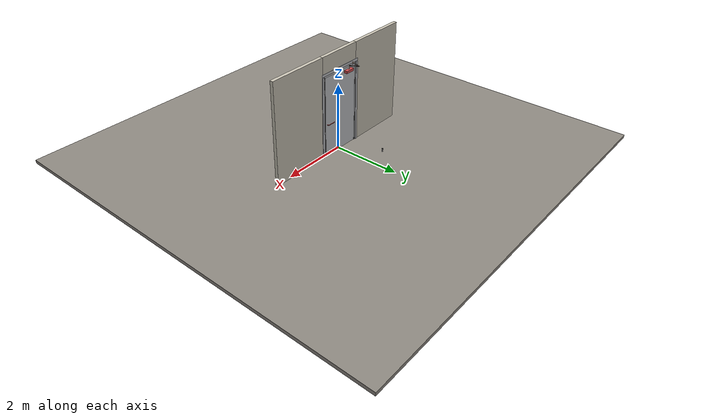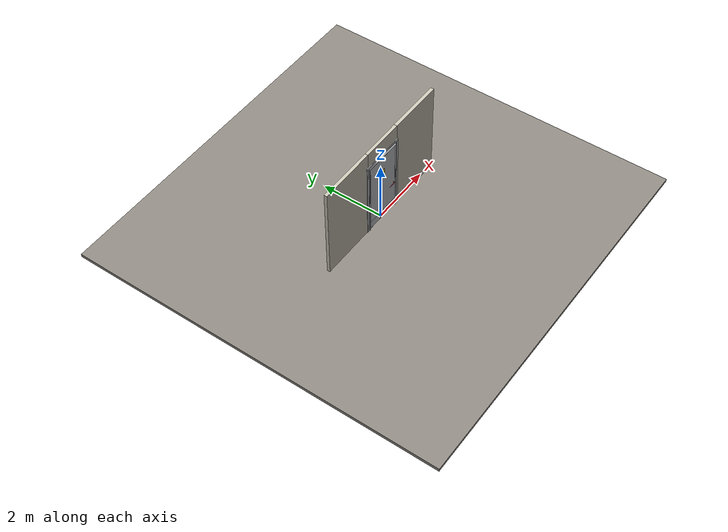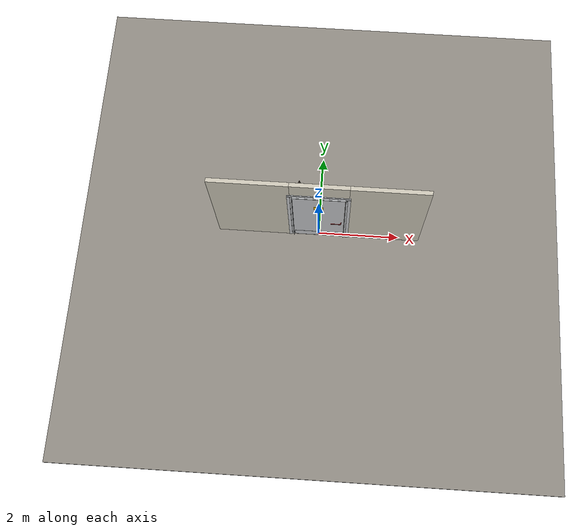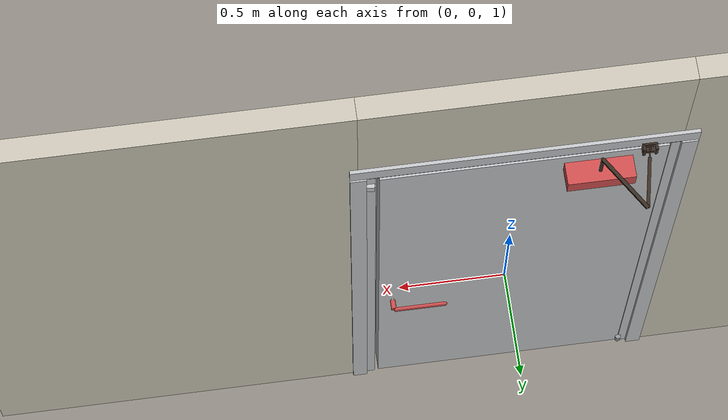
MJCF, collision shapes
<?xml version="1.0" ?>
<mujoco model="db0585_cold_storage_full">
  <compiler angle="radian" meshdir="../../hardware" texturedir="../../textures" autolimits="true" inertiafromgeom="false"/>
  <option timestep="0.002" integrator="implicitfast" cone="elliptic" impratio="10" noslip_iterations="3">
    <flag multiccd="enable"/>
  </option>
  <size memory="16M"/>
  <default>
    <geom condim="4" solref="0.005 1" solimp="0.95 0.99 0.001"/>
    <joint solreflimit="0.005 1" solimplimit="0.95 0.99 0.001"/>
    <tendon solreflimit="0.005 1"/>
    <equality solref="0.002 1"/>
  </default>
  <visual>
    <headlight ambient="0.4 0.4 0.4" diffuse="0.7 0.7 0.7" specular="0.2 0.2 0.2"/>
    <quality shadowsize="4096"/>
    <map znear="0.01" zfar="60"/>
  </visual>
  <asset>
    <mesh name="closer_body_fdc4667657" file="closer_body_fdc4667657.obj"/>
    <mesh name="hinge_05d9a38dfa" file="hinge_05d9a38dfa.obj"/>
    <mesh name="hinge_jamb_953fb56768" file="hinge_jamb_953fb56768.obj"/>
    <mesh name="lever_40740b93f7" file="lever_40740b93f7.obj"/>
    <material name="mat_floor" rgba="0.55 0.53 0.5 1" specular="0.2" shininess="0.15" reflectance="0"/>
    <material name="mat_wall" rgba="0.78 0.76 0.7 1" specular="0.2" shininess="0.1" reflectance="0"/>
    <material name="mat_hinge" rgba="0.55 0.56 0.58 1" specular="0.8" shininess="0.55" reflectance="0.4"/>
    <material name="mat_leaf" rgba="0.75 0.76 0.77 1" specular="0.8" shininess="0.65" reflectance="0.4"/>
    <material name="mat_op_chrome" rgba="0.9 0.9 0.92 1" specular="0.8" shininess="0.9" reflectance="0.4"/>
    <material name="mat_trim" rgba="0.85 0.66 0.3 1" specular="0.8" shininess="0.75" reflectance="0.4"/>
    <material name="mat_bolt" rgba="0.75 0.76 0.77 1" specular="0.8" shininess="0.65" reflectance="0.4"/>
    <material name="mat_frame" rgba="0.75 0.76 0.77 1" specular="0.8" shininess="0.65" reflectance="0.4"/>
    <material name="mat_seal" rgba="0.1 0.1 0.1 1" specular="0.2" shininess="0.1" reflectance="0"/>
    <material name="mat_closer" rgba="0.22 0.17 0.13 1" specular="0.8" shininess="0.6" reflectance="0.4"/>
    <material name="mat_kick" rgba="0.75 0.76 0.77 1" specular="0.8" shininess="0.65" reflectance="0.4"/>
    <material name="mat_placard" rgba="0.95 0.75 0.05 1" specular="0.2" shininess="0.5" reflectance="0"/>
    <material name="mat_bumper_stop" rgba="0.08 0.08 0.08 1" specular="0.2" shininess="0.1" reflectance="0"/>
    <material name="mat_stop_base" rgba="0.9 0.9 0.92 1" specular="0.8" shininess="0.9" reflectance="0.4"/>
    <texture name="skybox" type="skybox" builtin="gradient" rgb1="0.6 0.7 0.85" rgb2="0.9 0.92 0.95" width="256" height="256"/>
  </asset>
  <worldbody>
    <light name="sun" pos="1.5 -2.5 4" dir="-0.3 0.5 -0.8" directional="true" diffuse="0.8 0.8 0.8" specular="0.3 0.3 0.3" castshadow="true"/>
    <light name="fill" pos="-1.5 2.5 3" dir="0.3 -0.5 -0.7" directional="true" diffuse="0.35 0.35 0.4" castshadow="false"/>
    <camera name="robot_view" pos="0 -2.93125 2.05075" xyaxes="1 0 0 0 0.26963 0.962964" fovy="52"/>
    <camera name="far_view" pos="0 2.93125 2.05075" xyaxes="-1 0 0 0 -0.26963 0.962964" fovy="52"/>
    <camera name="iso" pos="2.22775 -2.46225 2.51975" xyaxes="0.741536 0.670913 0 -0.242917 0.268487 0.932151" fovy="46"/>
    <camera name="detail_handle" pos="0.518 -0.905 1.28" xyaxes="0.97561 0.219512 0 -0.070934 0.315262 0.94635" fovy="38"/>
    <geom name="floor" type="box" size="6 6 0.05" pos="0 0 -0.05" material="mat_floor" group="0" contype="1" conaffinity="1" friction="0.8 0.005 0.0001" density="2400"/>
    <geom name="wall_left" type="box" size="0.9175 0.05 1.53" pos="-1.5825 0 1.53" material="mat_wall" group="0" contype="1" conaffinity="1" friction="0.6 0.005 0.0001" density="800"/>
    <geom name="wall_right" type="box" size="0.9025 0.05 1.53" pos="1.5975 0 1.53" material="mat_wall" group="0" contype="1" conaffinity="1" friction="0.6 0.005 0.0001" density="800"/>
    <geom name="wall_header" type="box" size="0.68 0.05 0.2625" pos="0.015 0 2.7975" material="mat_wall" group="0" contype="1" conaffinity="1" friction="0.6 0.005 0.0001" density="800"/>
    <geom name="hinge_0_jamb" type="mesh" mesh="hinge_jamb_953fb56768" pos="-0.617 0.057 0.262" quat="0 1 0 0" material="mat_hinge" group="1" contype="0" conaffinity="0" density="7850"/>
    <geom name="hinge_1_jamb" type="mesh" mesh="hinge_jamb_953fb56768" pos="-0.617 0.057 1.2242" quat="0 1 0 0" material="mat_hinge" group="1" contype="0" conaffinity="0" density="7850"/>
    <geom name="hinge_2_jamb" type="mesh" mesh="hinge_jamb_953fb56768" pos="-0.617 0.057 2.2564" quat="0 1 0 0" material="mat_hinge" group="1" contype="0" conaffinity="0" density="7850"/>
    <geom name="jamb_hinge" type="box" size="0.0225 0.05 1.23" pos="-0.6425 0 1.23" material="mat_frame" group="0" contype="1" conaffinity="1" friction="0.6 0.005 0.0001" density="300"/>
    <geom name="strike_2386_wall_n" type="box" size="0.0375 0.02125 0.019" pos="0.6575 -0.02875 2.3864" material="mat_frame" group="0" contype="1" conaffinity="1" friction="0.6 0.005 0.0001" density="300"/>
    <geom name="strike_2386_wall_p" type="box" size="0.0375 0.008 0.019" pos="0.6575 0.0155 2.3864" material="mat_frame" group="0" contype="1" conaffinity="1" friction="0.6 0.005 0.0001" density="300"/>
    <geom name="strike_2386_ramp" type="box" size="0.0375 0.023512 0.019" pos="0.660582 0.041168 2.3864" quat="0.997211 0 0 -0.074638" material="mat_frame" group="0" contype="1" conaffinity="1" friction="0.12 0.005 0.0001" density="300"/>
    <geom name="strike_2386_ramp_n" type="box" size="0.0375 0.023512 0.019" pos="0.660582 -0.029168 2.3864" quat="0.997211 0 0 0.074638" material="mat_frame" group="0" contype="1" conaffinity="1" friction="0.12 0.005 0.0001" density="300"/>
    <geom name="strike_2386_back" type="box" size="0.0325 0.0075 0.019" pos="0.6625 0 2.3864" material="mat_frame" group="0" contype="1" conaffinity="1" friction="0.6 0.005 0.0001" density="300"/>
    <geom name="jamb_strike_0" type="box" size="0.0375 0.05 1.1837" pos="0.6575 0 1.1837" material="mat_frame" group="0" contype="1" conaffinity="1" friction="0.6 0.005 0.0001" density="300"/>
    <geom name="jamb_strike_1" type="box" size="0.0375 0.05 0.0273" pos="0.6575 0 2.4327" material="mat_frame" group="0" contype="1" conaffinity="1" friction="0.6 0.005 0.0001" density="300"/>
    <geom name="jamb_head" type="box" size="0.68 0.05 0.0225" pos="0.015 0 2.4825" material="mat_frame" group="0" contype="1" conaffinity="1" friction="0.6 0.005 0.0001" density="300"/>
    <geom name="head_stud" type="box" size="0.68 0.05 0.015" pos="0.015 0 2.52" material="mat_wall" group="0" contype="1" conaffinity="1" friction="0.6 0.005 0.0001" density="500"/>
    <geom name="stop_hinge" type="box" size="0.0055 0.016 1.23" pos="-0.6145 -0.0665 1.23" material="mat_frame" group="0" contype="1" conaffinity="1" friction="0.6 0.005 0.0001" density="300"/>
    <geom name="stop_strike" type="box" size="0.0055 0.016 1.23" pos="0.6145 -0.0665 1.23" material="mat_frame" group="0" contype="1" conaffinity="1" friction="0.6 0.005 0.0001" density="300"/>
    <geom name="stop_head" type="box" size="0.62 0.016 0.0055" pos="0 -0.0665 2.4545" material="mat_frame" group="0" contype="1" conaffinity="1" friction="0.6 0.005 0.0001" density="300"/>
    <geom name="seal_hinge" type="box" size="0.004 0.006 1.23" pos="-0.617 -0.056 1.23" material="mat_seal" group="1" contype="0" conaffinity="0" density="1100"/>
    <geom name="seal_strike" type="box" size="0.004 0.006 1.23" pos="0.617 -0.056 1.23" material="mat_seal" group="1" contype="0" conaffinity="0" density="1100"/>
    <geom name="seal_head" type="box" size="0.6 0.006 0.008" pos="0 -0.056 2.448" material="mat_seal" group="1" contype="0" conaffinity="0" density="1100"/>
    <geom name="casing_l_n" type="box" size="0.035 0.008 1.2525" pos="-0.695 -0.058 1.23" material="mat_frame" group="2" contype="0" conaffinity="0" density="300"/>
    <geom name="casing_r_n" type="box" size="0.035 0.008 1.2525" pos="0.695 -0.058 1.23" material="mat_frame" group="2" contype="0" conaffinity="0" density="300"/>
    <geom name="casing_h_n" type="box" size="0.73 0.008 0.035" pos="0 -0.058 2.535" material="mat_frame" group="2" contype="0" conaffinity="0" density="300"/>
    <geom name="casing_l_p" type="box" size="0.035 0.008 1.2525" pos="-0.695 0.058 1.23" material="mat_frame" group="2" contype="0" conaffinity="0" density="300"/>
    <geom name="casing_r_p" type="box" size="0.035 0.008 1.2525" pos="0.695 0.058 1.23" material="mat_frame" group="2" contype="0" conaffinity="0" density="300"/>
    <geom name="casing_h_p" type="box" size="0.73 0.008 0.035" pos="0 0.058 2.535" material="mat_frame" group="2" contype="0" conaffinity="0" density="300"/>
    <geom name="closer_bracket" type="box" size="0.032 0.004 0.025" pos="-0.52 0.07 2.497" material="mat_closer" group="1" contype="0" conaffinity="0" density="2700"/>
    <geom name="closer_shoe_guide_-1" type="box" size="0.006 0.016 0.025" pos="-0.546 0.082 2.497" material="mat_closer" group="1" contype="0" conaffinity="0" density="2700"/>
    <geom name="closer_shoe_guide_+1" type="box" size="0.006 0.016 0.025" pos="-0.494 0.082 2.497" material="mat_closer" group="1" contype="0" conaffinity="0" density="2700"/>
    <geom name="door_stop_base" type="cylinder" size="0.022 0.003" pos="-0.633 1.094 0.003" material="mat_stop_base" group="0" contype="1" conaffinity="1" friction="0.6 0.005 0.0001" density="7850"/>
    <geom name="door_stop_post" type="cylinder" size="0.012 0.0245" pos="-0.633 1.094 0.0305" material="mat_stop_base" group="0" contype="1" conaffinity="1" friction="0.6 0.005 0.0001" density="7850"/>
    <geom name="door_stop_bumper" type="cylinder" size="0.022 0.02" pos="-0.633 1.094 0.075" material="mat_bumper_stop" group="0" contype="1" conaffinity="1" friction="0.6 0.005 0.0001" density="1100"/>
    <site name="approach_point" pos="0 -1.5 0" quat="1 0 0 0" size="0.05" rgba="0.2 0.9 0.2 0.5" group="4"/>
    <site name="goal_point" pos="0 1.5 0" quat="1 0 0 0" size="0.05" rgba="0.2 0.9 0.2 0.5" group="4"/>
    <site name="door_plane_center" pos="0 0 1.23" quat="1 0 0 0" size="0.02" rgba="0.2 0.9 0.2 0.5" group="4"/>
    <body name="leaf_riser" pos="-0.62 0 0">
      <inertial pos="0.003 0.057 0.055" mass="0.174012" quat="0.707107 0 0.707107 0" diaginertia="0.000017053 0.00002732 0.00002732"/>
      <joint name="leaf_rise" type="slide" axis="0 0 1" limited="true" range="0 0.0264" damping="1" armature="0.5"/>
      <geom name="leaf_riser_marker" type="cylinder" size="0.014 0.018" pos="0.003 0.057 0.055" material="mat_hinge" group="1" contype="0" conaffinity="0" density="7850"/>
      <body name="leaf" pos="0 0 0">
        <inertial pos="0.542481 0.016063 1.367894" mass="73.630872" quat="-0.461028 0.489947 0.523079 0.523253" diaginertia="8.834089096 46.931154058 55.51311103"/>
        <joint name="leaf_hinge" type="hinge" axis="0 0 1" pos="0.003 0.057 0" limited="true" range="0 1.570796" solreflimit="0.02 1" damping="12.976218" frictionloss="4.992713" stiffness="21.358593" springref="-1.732324" armature="0.02"/>
        <geom name="leaf_slab" type="box" size="0.61 0.05 1.2122" pos="0.613 0 1.2242" material="mat_leaf" group="0" contype="1" conaffinity="1" friction="0.35 0.005 0.0001" density="1"/>
        <geom name="hinge_0" type="mesh" mesh="hinge_05d9a38dfa" pos="0.003 0.057 0.262" quat="0 1 0 0" material="mat_hinge" group="1" contype="0" conaffinity="0" density="7850"/>
        <geom name="hinge_1" type="mesh" mesh="hinge_05d9a38dfa" pos="0.003 0.057 1.2242" quat="0 1 0 0" material="mat_hinge" group="1" contype="0" conaffinity="0" density="7850"/>
        <geom name="hinge_2" type="mesh" mesh="hinge_05d9a38dfa" pos="0.003 0.057 2.2564" quat="0 1 0 0" material="mat_hinge" group="1" contype="0" conaffinity="0" density="7850"/>
        <geom name="leaf_mag_catch_faceplate" type="box" size="0.0006 0.012 0.029" pos="1.2224 0 2.3864" material="mat_bolt" group="1" contype="0" conaffinity="0" density="8500"/>
        <geom name="closer_body" type="mesh" mesh="closer_body_fdc4667657" pos="0.3 0.05 2.3444" quat="-0.707107 0.707107 0 0" material="mat_closer" group="1" contype="0" conaffinity="0" density="2000"/>
        <geom name="closer_body_col" type="box" size="0.145 0.05 0.035" pos="0.3 0.1 2.3444" material="mat_closer" group="3" contype="1" conaffinity="1" rgba="0.8 0.3 0.3 0.25" friction="0.6 0.005 0.0001" density="2000"/>
        <geom name="closer_pinion_shaft" type="cylinder" size="0.008 0.0728" pos="0.3 0.101 2.4172" material="mat_closer" group="1" contype="0" conaffinity="0" density="2700"/>
        <geom name="kick_plate_n" type="box" size="0.58 0.0008 0.125" pos="0.613 -0.0508 0.147" material="mat_kick" group="2" contype="0" conaffinity="0" density="7900"/>
        <geom name="warning_placard" type="box" size="0.11 0.001 0.08" pos="0.613 -0.051 1.8303" material="mat_placard" group="2" contype="0" conaffinity="0" density="1000"/>
        <site name="leaf_edge_mid" pos="1.223 0 1.2122" quat="1 0 0 0" size="0.02" rgba="0.2 0.9 0.2 0.5" group="4"/>
        <body name="leaf_handle" pos="1.158 0 1">
          <inertial pos="-0.046153 0 0" mass="2.987827" quat="0.707107 0 0 -0.707107" diaginertia="0.018437997 0.023746754 0.040214564"/>
          <joint name="leaf_handle_hinge" type="hinge" axis="0 -1 0" limited="true" range="0 0.5" damping="0.589936" frictionloss="0.07" stiffness="2.5" springref="-0.96" armature="0.01"/>
          <geom name="leaf_handle_spindle" type="cylinder" size="0.006 0.058" pos="0 0 0" quat="0.707107 -0.707107 0 0" material="mat_op_chrome" group="1" contype="0" conaffinity="0" density="7850"/>
          <geom name="leaf_handle_lever_n" type="mesh" mesh="lever_40740b93f7" pos="0 -0.05 0" quat="0.707107 0.707107 0 0" material="mat_op_chrome" group="1" contype="0" conaffinity="0" density="3000"/>
          <geom name="leaf_handle_lever_col_n" type="capsule" size="0.0095 0.1155" pos="-0.125 -0.105 0" quat="0.707107 0 -0.707107 0" material="mat_op_chrome" group="3" contype="1" conaffinity="1" rgba="0.8 0.3 0.3 0.25" friction="0.7 0.01 0.0001" density="3000"/>
          <geom name="leaf_handle_hub_col_n" type="cylinder" size="0.012 0.022" pos="0 -0.08 0" quat="0.707107 -0.707107 0 0" material="mat_op_chrome" group="3" contype="1" conaffinity="1" rgba="0.8 0.3 0.3 0.25" friction="0.6 0.005 0.0001" density="3000"/>
          <geom name="leaf_handle_lever_p" type="mesh" mesh="lever_40740b93f7" pos="0 0.05 0" quat="-0.707107 0.707107 0 0" material="mat_op_chrome" group="1" contype="0" conaffinity="0" density="3000"/>
          <geom name="leaf_handle_lever_col_p" type="capsule" size="0.0095 0.1155" pos="-0.125 0.105 0" quat="0.707107 0 -0.707107 0" material="mat_op_chrome" group="3" contype="1" conaffinity="1" rgba="0.8 0.3 0.3 0.25" friction="0.7 0.01 0.0001" density="3000"/>
          <geom name="leaf_handle_hub_col_p" type="cylinder" size="0.012 0.022" pos="0 0.08 0" quat="0.707107 -0.707107 0 0" material="mat_op_chrome" group="3" contype="1" conaffinity="1" rgba="0.8 0.3 0.3 0.25" friction="0.6 0.005 0.0001" density="3000"/>
          <site name="leaf_handle_grip_n" pos="-0.2 -0.105 0" quat="1 0 0 0" size="0.012" rgba="0.2 0.9 0.2 0.5" group="4"/>
          <site name="leaf_handle_grip_p" pos="-0.2 0.105 0" quat="1 0 0 0" size="0.012" rgba="0.2 0.9 0.2 0.5" group="4"/>
        </body>
        <body name="leaf_mag_catch" pos="1.223 0 2.3864">
          <inertial pos="-0.012 0 0" mass="0.030762" quat="0 0 0.707107 0.707107" diaginertia="0.000000526 0.000002949 0.000002949"/>
          <joint name="leaf_mag_catch_slide" type="slide" axis="-1 0 0" limited="true" range="0 0.006" damping="2" frictionloss="0.3" stiffness="20000" springref="-0.006" armature="0.1"/>
          <geom name="leaf_mag_catch_capsule" type="capsule" size="0.006 0.012" pos="-0.012 0 0" quat="0.707107 0 0.707107 0" material="mat_bolt" group="0" contype="1" conaffinity="1" friction="0.2 0.005 0.0001" density="8500"/>
        </body>
        <body name="closer_arm_main" pos="0.3 0.101 2.49" quat="0.485633 0 0 0.874163">
          <inertial pos="0.14 0 0" mass="0.12096" quat="1 0 0 0" diaginertia="0.000003588 0.00079128 0.000792852"/>
          <joint name="closer_pinion" type="hinge" axis="0 0 1" limited="false" damping="0.01" armature="0.002"/>
          <geom name="closer_arm_main_geom" type="box" size="0.14 0.008 0.005" pos="0.14 0 0" material="mat_closer" group="1" contype="0" conaffinity="0" density="2700"/>
          <body name="closer_arm_fore" pos="0.28 0 0" quat="-0.37011 0 0 -0.928988">
            <inertial pos="0.127353 0 0" mass="0.076107" quat="1 0 0 0" diaginertia="0.000001712 0.000430185 0.000430774"/>
            <joint name="closer_elbow" type="hinge" axis="0 0 1" limited="false" damping="0.01" armature="0.002"/>
            <geom name="closer_arm_fore_geom" type="box" size="0.1125 0.007 0.004" pos="0.1125 0 0" material="mat_closer" group="1" contype="0" conaffinity="0" density="2700"/>
            <geom name="closer_shoe_neck" type="box" size="0.0175 0.003 0.003" pos="0.2425 0 0" material="mat_closer" group="1" contype="0" conaffinity="0" density="2700"/>
            <geom name="closer_shoe_pivot" type="cylinder" size="0.005 0.011" pos="0.26 0 0" material="mat_closer" group="1" contype="0" conaffinity="0" density="2700"/>
          </body>
        </body>
      </body>
    </body>
    <body name="closer_shoe" pos="-0.52 0.084 2.49">
      <inertial pos="0 0 0" mass="0.033696" quat="1 0 0 0" diaginertia="0.000001842 0.00000499 0.000005394"/>
      <joint name="closer_shoe_slide" type="slide" axis="0 0 1" limited="true" range="0 0.014" damping="0.1" armature="0.05"/>
      <geom name="closer_shoe_block" type="box" size="0.0195 0.01 0.008" pos="0 0 0" material="mat_closer" group="1" contype="0" conaffinity="0" density="2700"/>
    </body>
  </worldbody>
  <equality>
    <joint name="leaf_rise_couple" joint1="leaf_rise" joint2="leaf_hinge" polycoef="0 0.007639 0 0 0" active="true"/>
    <connect name="closer_arm_connect" body1="closer_arm_fore" body2="closer_shoe" anchor="0.26 0 0" active="true"/>
  </equality>
  <contact>
    <exclude body1="closer_arm_main" body2="leaf"/>
    <exclude body1="closer_arm_fore" body2="leaf"/>
    <exclude body1="closer_arm_main" body2="closer_arm_fore"/>
  </contact>
  <sensor>
    <jointpos name="leaf_hinge_pos" joint="leaf_hinge"/>
    <jointvel name="leaf_hinge_vel" joint="leaf_hinge"/>
    <jointpos name="leaf_handle_hinge_pos" joint="leaf_handle_hinge"/>
    <jointvel name="leaf_handle_hinge_vel" joint="leaf_handle_hinge"/>
    <jointpos name="leaf_mag_catch_slide_pos" joint="leaf_mag_catch_slide"/>
    <jointvel name="leaf_mag_catch_slide_vel" joint="leaf_mag_catch_slide"/>
  </sensor>
</mujoco>
